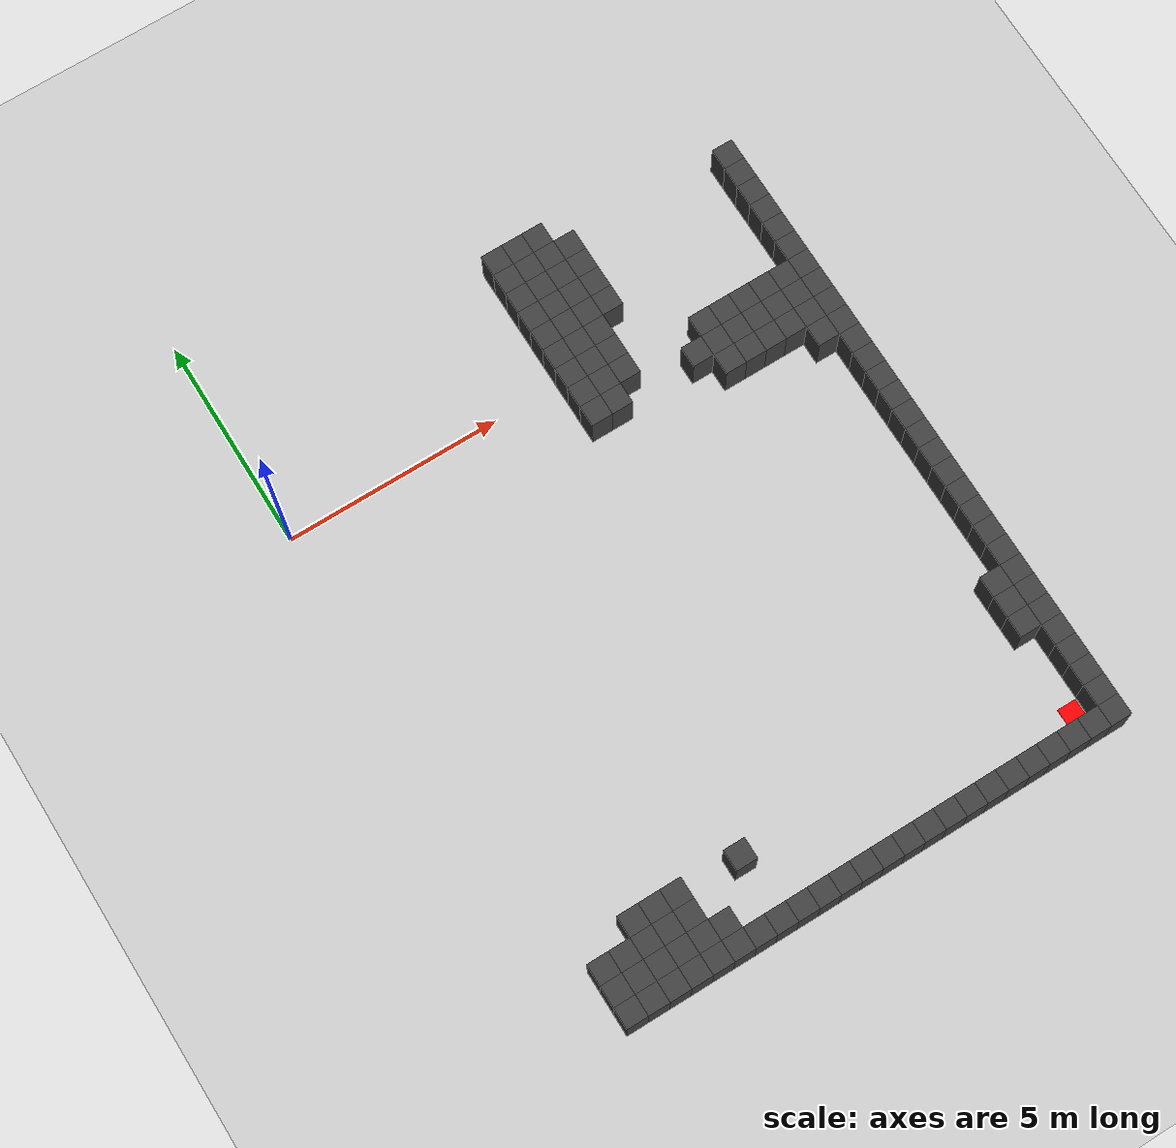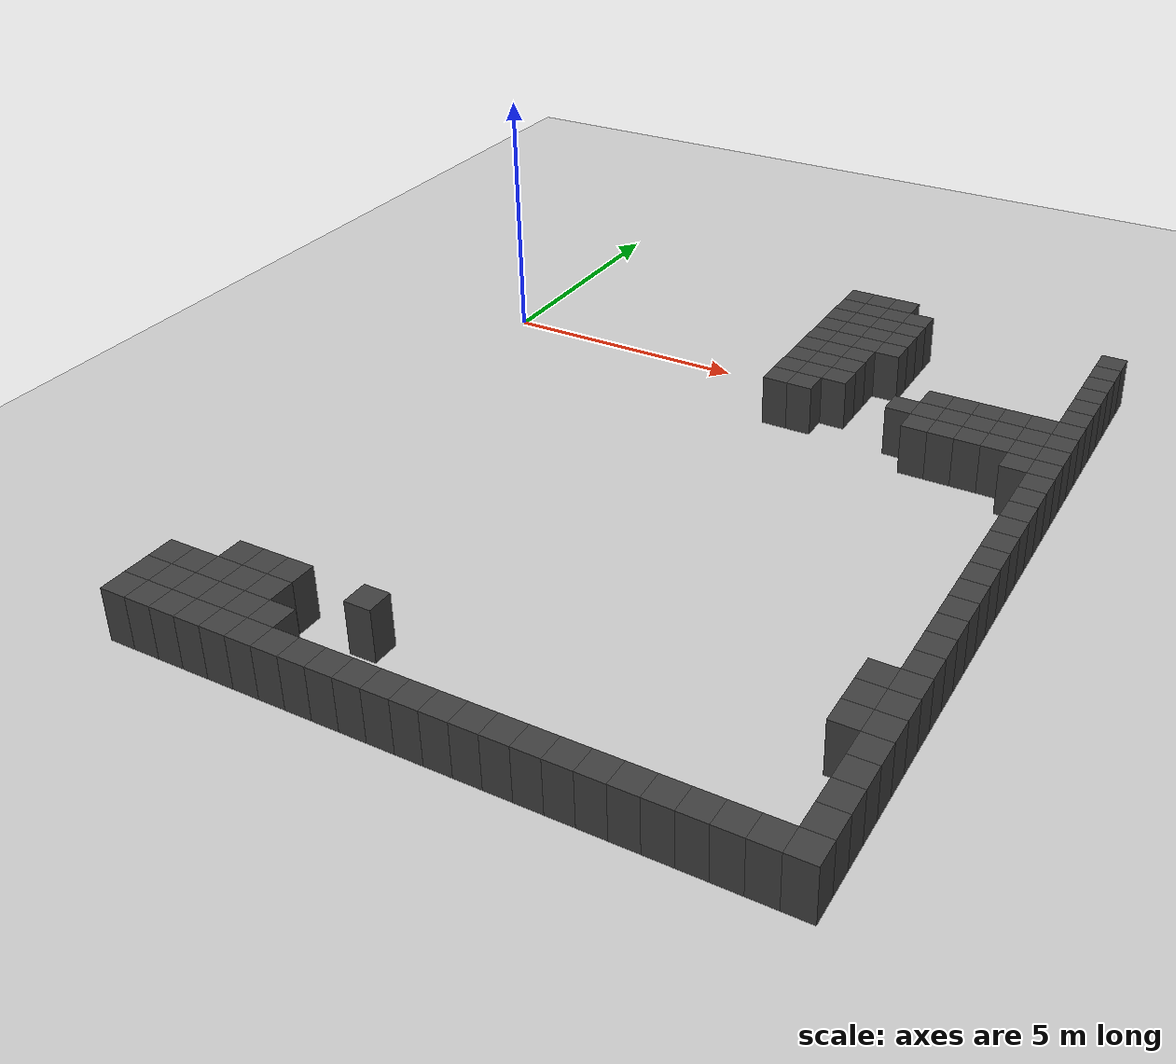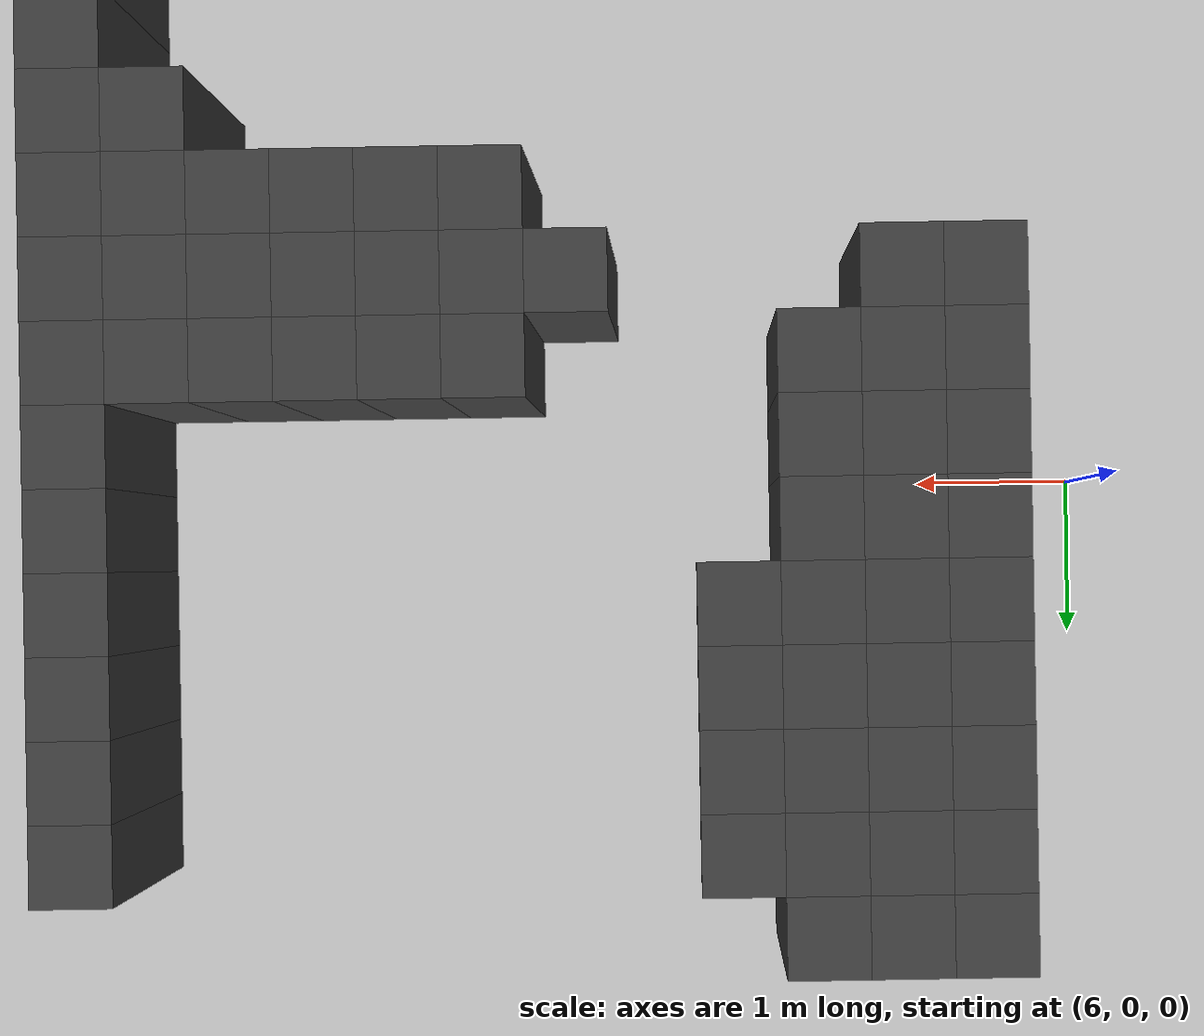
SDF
<sdf version="1.7">
 <world name="map_5836">
  <model name="ground_plane">
   <static>true</static>
   <link name="link">
    <collision name="collision">
     <geometry><plane><normal>0 0 1</normal><size>200 200</size></plane></geometry>
    </collision>
    <visual name="visual">
     <geometry><plane><normal>0 0 1</normal><size>200 200</size></plane></geometry>
     <material><ambient>0.8 0.8 0.8 1</ambient><diffuse>0.8 0.8 0.8 1</diffuse></material>
    </visual>
   </link>
  </model>
  <model name="maze_environment">
   <static>true</static>
   <link name="wall_222">
    <pose>6.750 2.750 0.500 0 0 0</pose>
    <collision name="col"><geometry><box><size>0.5 0.5 1.0</size></box></geometry></collision>
    <visual name="vis">
     <geometry><box><size>0.5 0.5 1.0</size></box></geometry>
     <material><ambient>0.15 0.15 0.15 1</ambient><diffuse>0.25 0.25 0.25 1</diffuse></material>
    </visual>
   </link>
   <link name="wall_223">
    <pose>7.250 2.750 0.500 0 0 0</pose>
    <collision name="col"><geometry><box><size>0.5 0.5 1.0</size></box></geometry></collision>
    <visual name="vis">
     <geometry><box><size>0.5 0.5 1.0</size></box></geometry>
     <material><ambient>0.15 0.15 0.15 1</ambient><diffuse>0.25 0.25 0.25 1</diffuse></material>
    </visual>
   </link>
   <link name="wall_224">
    <pose>7.750 2.750 0.500 0 0 0</pose>
    <collision name="col"><geometry><box><size>0.5 0.5 1.0</size></box></geometry></collision>
    <visual name="vis">
     <geometry><box><size>0.5 0.5 1.0</size></box></geometry>
     <material><ambient>0.15 0.15 0.15 1</ambient><diffuse>0.25 0.25 0.25 1</diffuse></material>
    </visual>
   </link>
   <link name="wall_230">
    <pose>6.750 2.250 0.500 0 0 0</pose>
    <collision name="col"><geometry><box><size>0.5 0.5 1.0</size></box></geometry></collision>
    <visual name="vis">
     <geometry><box><size>0.5 0.5 1.0</size></box></geometry>
     <material><ambient>0.15 0.15 0.15 1</ambient><diffuse>0.25 0.25 0.25 1</diffuse></material>
    </visual>
   </link>
   <link name="wall_231">
    <pose>7.250 2.250 0.500 0 0 0</pose>
    <collision name="col"><geometry><box><size>0.5 0.5 1.0</size></box></geometry></collision>
    <visual name="vis">
     <geometry><box><size>0.5 0.5 1.0</size></box></geometry>
     <material><ambient>0.15 0.15 0.15 1</ambient><diffuse>0.25 0.25 0.25 1</diffuse></material>
    </visual>
   </link>
   <link name="wall_232">
    <pose>7.750 2.250 0.500 0 0 0</pose>
    <collision name="col"><geometry><box><size>0.5 0.5 1.0</size></box></geometry></collision>
    <visual name="vis">
     <geometry><box><size>0.5 0.5 1.0</size></box></geometry>
     <material><ambient>0.15 0.15 0.15 1</ambient><diffuse>0.25 0.25 0.25 1</diffuse></material>
    </visual>
   </link>
   <link name="wall_233">
    <pose>8.250 2.250 0.500 0 0 0</pose>
    <collision name="col"><geometry><box><size>0.5 0.5 1.0</size></box></geometry></collision>
    <visual name="vis">
     <geometry><box><size>0.5 0.5 1.0</size></box></geometry>
     <material><ambient>0.15 0.15 0.15 1</ambient><diffuse>0.25 0.25 0.25 1</diffuse></material>
    </visual>
   </link>
   <link name="wall_234">
    <pose>12.250 2.250 0.500 0 0 0</pose>
    <collision name="col"><geometry><box><size>0.5 0.5 1.0</size></box></geometry></collision>
    <visual name="vis">
     <geometry><box><size>0.5 0.5 1.0</size></box></geometry>
     <material><ambient>0.15 0.15 0.15 1</ambient><diffuse>0.25 0.25 0.25 1</diffuse></material>
    </visual>
   </link>
   <link name="wall_238">
    <pose>6.750 1.750 0.500 0 0 0</pose>
    <collision name="col"><geometry><box><size>0.5 0.5 1.0</size></box></geometry></collision>
    <visual name="vis">
     <geometry><box><size>0.5 0.5 1.0</size></box></geometry>
     <material><ambient>0.15 0.15 0.15 1</ambient><diffuse>0.25 0.25 0.25 1</diffuse></material>
    </visual>
   </link>
   <link name="wall_239">
    <pose>7.250 1.750 0.500 0 0 0</pose>
    <collision name="col"><geometry><box><size>0.5 0.5 1.0</size></box></geometry></collision>
    <visual name="vis">
     <geometry><box><size>0.5 0.5 1.0</size></box></geometry>
     <material><ambient>0.15 0.15 0.15 1</ambient><diffuse>0.25 0.25 0.25 1</diffuse></material>
    </visual>
   </link>
   <link name="wall_240">
    <pose>7.750 1.750 0.500 0 0 0</pose>
    <collision name="col"><geometry><box><size>0.5 0.5 1.0</size></box></geometry></collision>
    <visual name="vis">
     <geometry><box><size>0.5 0.5 1.0</size></box></geometry>
     <material><ambient>0.15 0.15 0.15 1</ambient><diffuse>0.25 0.25 0.25 1</diffuse></material>
    </visual>
   </link>
   <link name="wall_241">
    <pose>8.250 1.750 0.500 0 0 0</pose>
    <collision name="col"><geometry><box><size>0.5 0.5 1.0</size></box></geometry></collision>
    <visual name="vis">
     <geometry><box><size>0.5 0.5 1.0</size></box></geometry>
     <material><ambient>0.15 0.15 0.15 1</ambient><diffuse>0.25 0.25 0.25 1</diffuse></material>
    </visual>
   </link>
   <link name="wall_242">
    <pose>12.250 1.750 0.500 0 0 0</pose>
    <collision name="col"><geometry><box><size>0.5 0.5 1.0</size></box></geometry></collision>
    <visual name="vis">
     <geometry><box><size>0.5 0.5 1.0</size></box></geometry>
     <material><ambient>0.15 0.15 0.15 1</ambient><diffuse>0.25 0.25 0.25 1</diffuse></material>
    </visual>
   </link>
   <link name="wall_249">
    <pose>6.750 1.250 0.500 0 0 0</pose>
    <collision name="col"><geometry><box><size>0.5 0.5 1.0</size></box></geometry></collision>
    <visual name="vis">
     <geometry><box><size>0.5 0.5 1.0</size></box></geometry>
     <material><ambient>0.15 0.15 0.15 1</ambient><diffuse>0.25 0.25 0.25 1</diffuse></material>
    </visual>
   </link>
   <link name="wall_250">
    <pose>7.250 1.250 0.500 0 0 0</pose>
    <collision name="col"><geometry><box><size>0.5 0.5 1.0</size></box></geometry></collision>
    <visual name="vis">
     <geometry><box><size>0.5 0.5 1.0</size></box></geometry>
     <material><ambient>0.15 0.15 0.15 1</ambient><diffuse>0.25 0.25 0.25 1</diffuse></material>
    </visual>
   </link>
   <link name="wall_251">
    <pose>7.750 1.250 0.500 0 0 0</pose>
    <collision name="col"><geometry><box><size>0.5 0.5 1.0</size></box></geometry></collision>
    <visual name="vis">
     <geometry><box><size>0.5 0.5 1.0</size></box></geometry>
     <material><ambient>0.15 0.15 0.15 1</ambient><diffuse>0.25 0.25 0.25 1</diffuse></material>
    </visual>
   </link>
   <link name="wall_252">
    <pose>8.250 1.250 0.500 0 0 0</pose>
    <collision name="col"><geometry><box><size>0.5 0.5 1.0</size></box></geometry></collision>
    <visual name="vis">
     <geometry><box><size>0.5 0.5 1.0</size></box></geometry>
     <material><ambient>0.15 0.15 0.15 1</ambient><diffuse>0.25 0.25 0.25 1</diffuse></material>
    </visual>
   </link>
   <link name="wall_253">
    <pose>12.250 1.250 0.500 0 0 0</pose>
    <collision name="col"><geometry><box><size>0.5 0.5 1.0</size></box></geometry></collision>
    <visual name="vis">
     <geometry><box><size>0.5 0.5 1.0</size></box></geometry>
     <material><ambient>0.15 0.15 0.15 1</ambient><diffuse>0.25 0.25 0.25 1</diffuse></material>
    </visual>
   </link>
   <link name="wall_260">
    <pose>6.750 0.750 0.500 0 0 0</pose>
    <collision name="col"><geometry><box><size>0.5 0.5 1.0</size></box></geometry></collision>
    <visual name="vis">
     <geometry><box><size>0.5 0.5 1.0</size></box></geometry>
     <material><ambient>0.15 0.15 0.15 1</ambient><diffuse>0.25 0.25 0.25 1</diffuse></material>
    </visual>
   </link>
   <link name="wall_261">
    <pose>7.250 0.750 0.500 0 0 0</pose>
    <collision name="col"><geometry><box><size>0.5 0.5 1.0</size></box></geometry></collision>
    <visual name="vis">
     <geometry><box><size>0.5 0.5 1.0</size></box></geometry>
     <material><ambient>0.15 0.15 0.15 1</ambient><diffuse>0.25 0.25 0.25 1</diffuse></material>
    </visual>
   </link>
   <link name="wall_262">
    <pose>7.750 0.750 0.500 0 0 0</pose>
    <collision name="col"><geometry><box><size>0.5 0.5 1.0</size></box></geometry></collision>
    <visual name="vis">
     <geometry><box><size>0.5 0.5 1.0</size></box></geometry>
     <material><ambient>0.15 0.15 0.15 1</ambient><diffuse>0.25 0.25 0.25 1</diffuse></material>
    </visual>
   </link>
   <link name="wall_263">
    <pose>8.250 0.750 0.500 0 0 0</pose>
    <collision name="col"><geometry><box><size>0.5 0.5 1.0</size></box></geometry></collision>
    <visual name="vis">
     <geometry><box><size>0.5 0.5 1.0</size></box></geometry>
     <material><ambient>0.15 0.15 0.15 1</ambient><diffuse>0.25 0.25 0.25 1</diffuse></material>
    </visual>
   </link>
   <link name="wall_264">
    <pose>12.250 0.750 0.500 0 0 0</pose>
    <collision name="col"><geometry><box><size>0.5 0.5 1.0</size></box></geometry></collision>
    <visual name="vis">
     <geometry><box><size>0.5 0.5 1.0</size></box></geometry>
     <material><ambient>0.15 0.15 0.15 1</ambient><diffuse>0.25 0.25 0.25 1</diffuse></material>
    </visual>
   </link>
   <link name="wall_270">
    <pose>6.750 0.250 0.500 0 0 0</pose>
    <collision name="col"><geometry><box><size>0.5 0.5 1.0</size></box></geometry></collision>
    <visual name="vis">
     <geometry><box><size>0.5 0.5 1.0</size></box></geometry>
     <material><ambient>0.15 0.15 0.15 1</ambient><diffuse>0.25 0.25 0.25 1</diffuse></material>
    </visual>
   </link>
   <link name="wall_271">
    <pose>7.250 0.250 0.500 0 0 0</pose>
    <collision name="col"><geometry><box><size>0.5 0.5 1.0</size></box></geometry></collision>
    <visual name="vis">
     <geometry><box><size>0.5 0.5 1.0</size></box></geometry>
     <material><ambient>0.15 0.15 0.15 1</ambient><diffuse>0.25 0.25 0.25 1</diffuse></material>
    </visual>
   </link>
   <link name="wall_272">
    <pose>7.750 0.250 0.500 0 0 0</pose>
    <collision name="col"><geometry><box><size>0.5 0.5 1.0</size></box></geometry></collision>
    <visual name="vis">
     <geometry><box><size>0.5 0.5 1.0</size></box></geometry>
     <material><ambient>0.15 0.15 0.15 1</ambient><diffuse>0.25 0.25 0.25 1</diffuse></material>
    </visual>
   </link>
   <link name="wall_273">
    <pose>12.250 0.250 0.500 0 0 0</pose>
    <collision name="col"><geometry><box><size>0.5 0.5 1.0</size></box></geometry></collision>
    <visual name="vis">
     <geometry><box><size>0.5 0.5 1.0</size></box></geometry>
     <material><ambient>0.15 0.15 0.15 1</ambient><diffuse>0.25 0.25 0.25 1</diffuse></material>
    </visual>
   </link>
   <link name="wall_278">
    <pose>6.750 -0.250 0.500 0 0 0</pose>
    <collision name="col"><geometry><box><size>0.5 0.5 1.0</size></box></geometry></collision>
    <visual name="vis">
     <geometry><box><size>0.5 0.5 1.0</size></box></geometry>
     <material><ambient>0.15 0.15 0.15 1</ambient><diffuse>0.25 0.25 0.25 1</diffuse></material>
    </visual>
   </link>
   <link name="wall_279">
    <pose>7.250 -0.250 0.500 0 0 0</pose>
    <collision name="col"><geometry><box><size>0.5 0.5 1.0</size></box></geometry></collision>
    <visual name="vis">
     <geometry><box><size>0.5 0.5 1.0</size></box></geometry>
     <material><ambient>0.15 0.15 0.15 1</ambient><diffuse>0.25 0.25 0.25 1</diffuse></material>
    </visual>
   </link>
   <link name="wall_280">
    <pose>7.750 -0.250 0.500 0 0 0</pose>
    <collision name="col"><geometry><box><size>0.5 0.5 1.0</size></box></geometry></collision>
    <visual name="vis">
     <geometry><box><size>0.5 0.5 1.0</size></box></geometry>
     <material><ambient>0.15 0.15 0.15 1</ambient><diffuse>0.25 0.25 0.25 1</diffuse></material>
    </visual>
   </link>
   <link name="wall_281">
    <pose>12.250 -0.250 0.500 0 0 0</pose>
    <collision name="col"><geometry><box><size>0.5 0.5 1.0</size></box></geometry></collision>
    <visual name="vis">
     <geometry><box><size>0.5 0.5 1.0</size></box></geometry>
     <material><ambient>0.15 0.15 0.15 1</ambient><diffuse>0.25 0.25 0.25 1</diffuse></material>
    </visual>
   </link>
   <link name="wall_286">
    <pose>6.750 -0.750 0.500 0 0 0</pose>
    <collision name="col"><geometry><box><size>0.5 0.5 1.0</size></box></geometry></collision>
    <visual name="vis">
     <geometry><box><size>0.5 0.5 1.0</size></box></geometry>
     <material><ambient>0.15 0.15 0.15 1</ambient><diffuse>0.25 0.25 0.25 1</diffuse></material>
    </visual>
   </link>
   <link name="wall_287">
    <pose>7.250 -0.750 0.500 0 0 0</pose>
    <collision name="col"><geometry><box><size>0.5 0.5 1.0</size></box></geometry></collision>
    <visual name="vis">
     <geometry><box><size>0.5 0.5 1.0</size></box></geometry>
     <material><ambient>0.15 0.15 0.15 1</ambient><diffuse>0.25 0.25 0.25 1</diffuse></material>
    </visual>
   </link>
   <link name="wall_288">
    <pose>7.750 -0.750 0.500 0 0 0</pose>
    <collision name="col"><geometry><box><size>0.5 0.5 1.0</size></box></geometry></collision>
    <visual name="vis">
     <geometry><box><size>0.5 0.5 1.0</size></box></geometry>
     <material><ambient>0.15 0.15 0.15 1</ambient><diffuse>0.25 0.25 0.25 1</diffuse></material>
    </visual>
   </link>
   <link name="wall_289">
    <pose>9.750 -0.750 0.500 0 0 0</pose>
    <collision name="col"><geometry><box><size>0.5 0.5 1.0</size></box></geometry></collision>
    <visual name="vis">
     <geometry><box><size>0.5 0.5 1.0</size></box></geometry>
     <material><ambient>0.15 0.15 0.15 1</ambient><diffuse>0.25 0.25 0.25 1</diffuse></material>
    </visual>
   </link>
   <link name="wall_290">
    <pose>10.250 -0.750 0.500 0 0 0</pose>
    <collision name="col"><geometry><box><size>0.5 0.5 1.0</size></box></geometry></collision>
    <visual name="vis">
     <geometry><box><size>0.5 0.5 1.0</size></box></geometry>
     <material><ambient>0.15 0.15 0.15 1</ambient><diffuse>0.25 0.25 0.25 1</diffuse></material>
    </visual>
   </link>
   <link name="wall_291">
    <pose>10.750 -0.750 0.500 0 0 0</pose>
    <collision name="col"><geometry><box><size>0.5 0.5 1.0</size></box></geometry></collision>
    <visual name="vis">
     <geometry><box><size>0.5 0.5 1.0</size></box></geometry>
     <material><ambient>0.15 0.15 0.15 1</ambient><diffuse>0.25 0.25 0.25 1</diffuse></material>
    </visual>
   </link>
   <link name="wall_292">
    <pose>11.250 -0.750 0.500 0 0 0</pose>
    <collision name="col"><geometry><box><size>0.5 0.5 1.0</size></box></geometry></collision>
    <visual name="vis">
     <geometry><box><size>0.5 0.5 1.0</size></box></geometry>
     <material><ambient>0.15 0.15 0.15 1</ambient><diffuse>0.25 0.25 0.25 1</diffuse></material>
    </visual>
   </link>
   <link name="wall_293">
    <pose>11.750 -0.750 0.500 0 0 0</pose>
    <collision name="col"><geometry><box><size>0.5 0.5 1.0</size></box></geometry></collision>
    <visual name="vis">
     <geometry><box><size>0.5 0.5 1.0</size></box></geometry>
     <material><ambient>0.15 0.15 0.15 1</ambient><diffuse>0.25 0.25 0.25 1</diffuse></material>
    </visual>
   </link>
   <link name="wall_294">
    <pose>12.250 -0.750 0.500 0 0 0</pose>
    <collision name="col"><geometry><box><size>0.5 0.5 1.0</size></box></geometry></collision>
    <visual name="vis">
     <geometry><box><size>0.5 0.5 1.0</size></box></geometry>
     <material><ambient>0.15 0.15 0.15 1</ambient><diffuse>0.25 0.25 0.25 1</diffuse></material>
    </visual>
   </link>
   <link name="wall_298">
    <pose>6.750 -1.250 0.500 0 0 0</pose>
    <collision name="col"><geometry><box><size>0.5 0.5 1.0</size></box></geometry></collision>
    <visual name="vis">
     <geometry><box><size>0.5 0.5 1.0</size></box></geometry>
     <material><ambient>0.15 0.15 0.15 1</ambient><diffuse>0.25 0.25 0.25 1</diffuse></material>
    </visual>
   </link>
   <link name="wall_299">
    <pose>7.250 -1.250 0.500 0 0 0</pose>
    <collision name="col"><geometry><box><size>0.5 0.5 1.0</size></box></geometry></collision>
    <visual name="vis">
     <geometry><box><size>0.5 0.5 1.0</size></box></geometry>
     <material><ambient>0.15 0.15 0.15 1</ambient><diffuse>0.25 0.25 0.25 1</diffuse></material>
    </visual>
   </link>
   <link name="wall_300">
    <pose>9.250 -1.250 0.500 0 0 0</pose>
    <collision name="col"><geometry><box><size>0.5 0.5 1.0</size></box></geometry></collision>
    <visual name="vis">
     <geometry><box><size>0.5 0.5 1.0</size></box></geometry>
     <material><ambient>0.15 0.15 0.15 1</ambient><diffuse>0.25 0.25 0.25 1</diffuse></material>
    </visual>
   </link>
   <link name="wall_301">
    <pose>9.750 -1.250 0.500 0 0 0</pose>
    <collision name="col"><geometry><box><size>0.5 0.5 1.0</size></box></geometry></collision>
    <visual name="vis">
     <geometry><box><size>0.5 0.5 1.0</size></box></geometry>
     <material><ambient>0.15 0.15 0.15 1</ambient><diffuse>0.25 0.25 0.25 1</diffuse></material>
    </visual>
   </link>
   <link name="wall_302">
    <pose>10.250 -1.250 0.500 0 0 0</pose>
    <collision name="col"><geometry><box><size>0.5 0.5 1.0</size></box></geometry></collision>
    <visual name="vis">
     <geometry><box><size>0.5 0.5 1.0</size></box></geometry>
     <material><ambient>0.15 0.15 0.15 1</ambient><diffuse>0.25 0.25 0.25 1</diffuse></material>
    </visual>
   </link>
   <link name="wall_303">
    <pose>10.750 -1.250 0.500 0 0 0</pose>
    <collision name="col"><geometry><box><size>0.5 0.5 1.0</size></box></geometry></collision>
    <visual name="vis">
     <geometry><box><size>0.5 0.5 1.0</size></box></geometry>
     <material><ambient>0.15 0.15 0.15 1</ambient><diffuse>0.25 0.25 0.25 1</diffuse></material>
    </visual>
   </link>
   <link name="wall_304">
    <pose>11.250 -1.250 0.500 0 0 0</pose>
    <collision name="col"><geometry><box><size>0.5 0.5 1.0</size></box></geometry></collision>
    <visual name="vis">
     <geometry><box><size>0.5 0.5 1.0</size></box></geometry>
     <material><ambient>0.15 0.15 0.15 1</ambient><diffuse>0.25 0.25 0.25 1</diffuse></material>
    </visual>
   </link>
   <link name="wall_305">
    <pose>11.750 -1.250 0.500 0 0 0</pose>
    <collision name="col"><geometry><box><size>0.5 0.5 1.0</size></box></geometry></collision>
    <visual name="vis">
     <geometry><box><size>0.5 0.5 1.0</size></box></geometry>
     <material><ambient>0.15 0.15 0.15 1</ambient><diffuse>0.25 0.25 0.25 1</diffuse></material>
    </visual>
   </link>
   <link name="wall_306">
    <pose>12.250 -1.250 0.500 0 0 0</pose>
    <collision name="col"><geometry><box><size>0.5 0.5 1.0</size></box></geometry></collision>
    <visual name="vis">
     <geometry><box><size>0.5 0.5 1.0</size></box></geometry>
     <material><ambient>0.15 0.15 0.15 1</ambient><diffuse>0.25 0.25 0.25 1</diffuse></material>
    </visual>
   </link>
   <link name="wall_308">
    <pose>9.750 -1.750 0.500 0 0 0</pose>
    <collision name="col"><geometry><box><size>0.5 0.5 1.0</size></box></geometry></collision>
    <visual name="vis">
     <geometry><box><size>0.5 0.5 1.0</size></box></geometry>
     <material><ambient>0.15 0.15 0.15 1</ambient><diffuse>0.25 0.25 0.25 1</diffuse></material>
    </visual>
   </link>
   <link name="wall_309">
    <pose>10.250 -1.750 0.500 0 0 0</pose>
    <collision name="col"><geometry><box><size>0.5 0.5 1.0</size></box></geometry></collision>
    <visual name="vis">
     <geometry><box><size>0.5 0.5 1.0</size></box></geometry>
     <material><ambient>0.15 0.15 0.15 1</ambient><diffuse>0.25 0.25 0.25 1</diffuse></material>
    </visual>
   </link>
   <link name="wall_310">
    <pose>10.750 -1.750 0.500 0 0 0</pose>
    <collision name="col"><geometry><box><size>0.5 0.5 1.0</size></box></geometry></collision>
    <visual name="vis">
     <geometry><box><size>0.5 0.5 1.0</size></box></geometry>
     <material><ambient>0.15 0.15 0.15 1</ambient><diffuse>0.25 0.25 0.25 1</diffuse></material>
    </visual>
   </link>
   <link name="wall_311">
    <pose>11.250 -1.750 0.500 0 0 0</pose>
    <collision name="col"><geometry><box><size>0.5 0.5 1.0</size></box></geometry></collision>
    <visual name="vis">
     <geometry><box><size>0.5 0.5 1.0</size></box></geometry>
     <material><ambient>0.15 0.15 0.15 1</ambient><diffuse>0.25 0.25 0.25 1</diffuse></material>
    </visual>
   </link>
   <link name="wall_312">
    <pose>11.750 -1.750 0.500 0 0 0</pose>
    <collision name="col"><geometry><box><size>0.5 0.5 1.0</size></box></geometry></collision>
    <visual name="vis">
     <geometry><box><size>0.5 0.5 1.0</size></box></geometry>
     <material><ambient>0.15 0.15 0.15 1</ambient><diffuse>0.25 0.25 0.25 1</diffuse></material>
    </visual>
   </link>
   <link name="wall_313">
    <pose>12.250 -1.750 0.500 0 0 0</pose>
    <collision name="col"><geometry><box><size>0.5 0.5 1.0</size></box></geometry></collision>
    <visual name="vis">
     <geometry><box><size>0.5 0.5 1.0</size></box></geometry>
     <material><ambient>0.15 0.15 0.15 1</ambient><diffuse>0.25 0.25 0.25 1</diffuse></material>
    </visual>
   </link>
   <link name="wall_315">
    <pose>11.750 -2.250 0.500 0 0 0</pose>
    <collision name="col"><geometry><box><size>0.5 0.5 1.0</size></box></geometry></collision>
    <visual name="vis">
     <geometry><box><size>0.5 0.5 1.0</size></box></geometry>
     <material><ambient>0.15 0.15 0.15 1</ambient><diffuse>0.25 0.25 0.25 1</diffuse></material>
    </visual>
   </link>
   <link name="wall_316">
    <pose>12.250 -2.250 0.500 0 0 0</pose>
    <collision name="col"><geometry><box><size>0.5 0.5 1.0</size></box></geometry></collision>
    <visual name="vis">
     <geometry><box><size>0.5 0.5 1.0</size></box></geometry>
     <material><ambient>0.15 0.15 0.15 1</ambient><diffuse>0.25 0.25 0.25 1</diffuse></material>
    </visual>
   </link>
   <link name="wall_318">
    <pose>12.250 -2.750 0.500 0 0 0</pose>
    <collision name="col"><geometry><box><size>0.5 0.5 1.0</size></box></geometry></collision>
    <visual name="vis">
     <geometry><box><size>0.5 0.5 1.0</size></box></geometry>
     <material><ambient>0.15 0.15 0.15 1</ambient><diffuse>0.25 0.25 0.25 1</diffuse></material>
    </visual>
   </link>
   <link name="wall_320">
    <pose>12.250 -3.250 0.500 0 0 0</pose>
    <collision name="col"><geometry><box><size>0.5 0.5 1.0</size></box></geometry></collision>
    <visual name="vis">
     <geometry><box><size>0.5 0.5 1.0</size></box></geometry>
     <material><ambient>0.15 0.15 0.15 1</ambient><diffuse>0.25 0.25 0.25 1</diffuse></material>
    </visual>
   </link>
   <link name="wall_322">
    <pose>12.250 -3.750 0.500 0 0 0</pose>
    <collision name="col"><geometry><box><size>0.5 0.5 1.0</size></box></geometry></collision>
    <visual name="vis">
     <geometry><box><size>0.5 0.5 1.0</size></box></geometry>
     <material><ambient>0.15 0.15 0.15 1</ambient><diffuse>0.25 0.25 0.25 1</diffuse></material>
    </visual>
   </link>
   <link name="wall_324">
    <pose>12.250 -4.250 0.500 0 0 0</pose>
    <collision name="col"><geometry><box><size>0.5 0.5 1.0</size></box></geometry></collision>
    <visual name="vis">
     <geometry><box><size>0.5 0.5 1.0</size></box></geometry>
     <material><ambient>0.15 0.15 0.15 1</ambient><diffuse>0.25 0.25 0.25 1</diffuse></material>
    </visual>
   </link>
   <link name="wall_326">
    <pose>12.250 -4.750 0.500 0 0 0</pose>
    <collision name="col"><geometry><box><size>0.5 0.5 1.0</size></box></geometry></collision>
    <visual name="vis">
     <geometry><box><size>0.5 0.5 1.0</size></box></geometry>
     <material><ambient>0.15 0.15 0.15 1</ambient><diffuse>0.25 0.25 0.25 1</diffuse></material>
    </visual>
   </link>
   <link name="wall_329">
    <pose>12.250 -5.250 0.500 0 0 0</pose>
    <collision name="col"><geometry><box><size>0.5 0.5 1.0</size></box></geometry></collision>
    <visual name="vis">
     <geometry><box><size>0.5 0.5 1.0</size></box></geometry>
     <material><ambient>0.15 0.15 0.15 1</ambient><diffuse>0.25 0.25 0.25 1</diffuse></material>
    </visual>
   </link>
   <link name="wall_334">
    <pose>12.250 -5.750 0.500 0 0 0</pose>
    <collision name="col"><geometry><box><size>0.5 0.5 1.0</size></box></geometry></collision>
    <visual name="vis">
     <geometry><box><size>0.5 0.5 1.0</size></box></geometry>
     <material><ambient>0.15 0.15 0.15 1</ambient><diffuse>0.25 0.25 0.25 1</diffuse></material>
    </visual>
   </link>
   <link name="wall_339">
    <pose>12.250 -6.250 0.500 0 0 0</pose>
    <collision name="col"><geometry><box><size>0.5 0.5 1.0</size></box></geometry></collision>
    <visual name="vis">
     <geometry><box><size>0.5 0.5 1.0</size></box></geometry>
     <material><ambient>0.15 0.15 0.15 1</ambient><diffuse>0.25 0.25 0.25 1</diffuse></material>
    </visual>
   </link>
   <link name="wall_344">
    <pose>12.250 -6.750 0.500 0 0 0</pose>
    <collision name="col"><geometry><box><size>0.5 0.5 1.0</size></box></geometry></collision>
    <visual name="vis">
     <geometry><box><size>0.5 0.5 1.0</size></box></geometry>
     <material><ambient>0.15 0.15 0.15 1</ambient><diffuse>0.25 0.25 0.25 1</diffuse></material>
    </visual>
   </link>
   <link name="wall_347">
    <pose>12.250 -7.250 0.500 0 0 0</pose>
    <collision name="col"><geometry><box><size>0.5 0.5 1.0</size></box></geometry></collision>
    <visual name="vis">
     <geometry><box><size>0.5 0.5 1.0</size></box></geometry>
     <material><ambient>0.15 0.15 0.15 1</ambient><diffuse>0.25 0.25 0.25 1</diffuse></material>
    </visual>
   </link>
   <link name="wall_349">
    <pose>12.250 -7.750 0.500 0 0 0</pose>
    <collision name="col"><geometry><box><size>0.5 0.5 1.0</size></box></geometry></collision>
    <visual name="vis">
     <geometry><box><size>0.5 0.5 1.0</size></box></geometry>
     <material><ambient>0.15 0.15 0.15 1</ambient><diffuse>0.25 0.25 0.25 1</diffuse></material>
    </visual>
   </link>
   <link name="wall_351">
    <pose>12.250 -8.250 0.500 0 0 0</pose>
    <collision name="col"><geometry><box><size>0.5 0.5 1.0</size></box></geometry></collision>
    <visual name="vis">
     <geometry><box><size>0.5 0.5 1.0</size></box></geometry>
     <material><ambient>0.15 0.15 0.15 1</ambient><diffuse>0.25 0.25 0.25 1</diffuse></material>
    </visual>
   </link>
   <link name="wall_353">
    <pose>11.750 -8.750 0.500 0 0 0</pose>
    <collision name="col"><geometry><box><size>0.5 0.5 1.0</size></box></geometry></collision>
    <visual name="vis">
     <geometry><box><size>0.5 0.5 1.0</size></box></geometry>
     <material><ambient>0.15 0.15 0.15 1</ambient><diffuse>0.25 0.25 0.25 1</diffuse></material>
    </visual>
   </link>
   <link name="wall_354">
    <pose>12.250 -8.750 0.500 0 0 0</pose>
    <collision name="col"><geometry><box><size>0.5 0.5 1.0</size></box></geometry></collision>
    <visual name="vis">
     <geometry><box><size>0.5 0.5 1.0</size></box></geometry>
     <material><ambient>0.15 0.15 0.15 1</ambient><diffuse>0.25 0.25 0.25 1</diffuse></material>
    </visual>
   </link>
   <link name="wall_359">
    <pose>11.750 -9.250 0.500 0 0 0</pose>
    <collision name="col"><geometry><box><size>0.5 0.5 1.0</size></box></geometry></collision>
    <visual name="vis">
     <geometry><box><size>0.5 0.5 1.0</size></box></geometry>
     <material><ambient>0.15 0.15 0.15 1</ambient><diffuse>0.25 0.25 0.25 1</diffuse></material>
    </visual>
   </link>
   <link name="wall_360">
    <pose>12.250 -9.250 0.500 0 0 0</pose>
    <collision name="col"><geometry><box><size>0.5 0.5 1.0</size></box></geometry></collision>
    <visual name="vis">
     <geometry><box><size>0.5 0.5 1.0</size></box></geometry>
     <material><ambient>0.15 0.15 0.15 1</ambient><diffuse>0.25 0.25 0.25 1</diffuse></material>
    </visual>
   </link>
   <link name="wall_367">
    <pose>11.750 -9.750 0.500 0 0 0</pose>
    <collision name="col"><geometry><box><size>0.5 0.5 1.0</size></box></geometry></collision>
    <visual name="vis">
     <geometry><box><size>0.5 0.5 1.0</size></box></geometry>
     <material><ambient>0.15 0.15 0.15 1</ambient><diffuse>0.25 0.25 0.25 1</diffuse></material>
    </visual>
   </link>
   <link name="wall_368">
    <pose>12.250 -9.750 0.500 0 0 0</pose>
    <collision name="col"><geometry><box><size>0.5 0.5 1.0</size></box></geometry></collision>
    <visual name="vis">
     <geometry><box><size>0.5 0.5 1.0</size></box></geometry>
     <material><ambient>0.15 0.15 0.15 1</ambient><diffuse>0.25 0.25 0.25 1</diffuse></material>
    </visual>
   </link>
   <link name="wall_377">
    <pose>12.250 -10.250 0.500 0 0 0</pose>
    <collision name="col"><geometry><box><size>0.5 0.5 1.0</size></box></geometry></collision>
    <visual name="vis">
     <geometry><box><size>0.5 0.5 1.0</size></box></geometry>
     <material><ambient>0.15 0.15 0.15 1</ambient><diffuse>0.25 0.25 0.25 1</diffuse></material>
    </visual>
   </link>
   <link name="wall_386">
    <pose>1.750 -10.750 0.500 0 0 0</pose>
    <collision name="col"><geometry><box><size>0.5 0.5 1.0</size></box></geometry></collision>
    <visual name="vis">
     <geometry><box><size>0.5 0.5 1.0</size></box></geometry>
     <material><ambient>0.15 0.15 0.15 1</ambient><diffuse>0.25 0.25 0.25 1</diffuse></material>
    </visual>
   </link>
   <link name="wall_387">
    <pose>2.250 -10.750 0.500 0 0 0</pose>
    <collision name="col"><geometry><box><size>0.5 0.5 1.0</size></box></geometry></collision>
    <visual name="vis">
     <geometry><box><size>0.5 0.5 1.0</size></box></geometry>
     <material><ambient>0.15 0.15 0.15 1</ambient><diffuse>0.25 0.25 0.25 1</diffuse></material>
    </visual>
   </link>
   <link name="wall_388">
    <pose>2.750 -10.750 0.500 0 0 0</pose>
    <collision name="col"><geometry><box><size>0.5 0.5 1.0</size></box></geometry></collision>
    <visual name="vis">
     <geometry><box><size>0.5 0.5 1.0</size></box></geometry>
     <material><ambient>0.15 0.15 0.15 1</ambient><diffuse>0.25 0.25 0.25 1</diffuse></material>
    </visual>
   </link>
   <link name="wall_389">
    <pose>4.250 -10.750 0.500 0 0 0</pose>
    <collision name="col"><geometry><box><size>0.5 0.5 1.0</size></box></geometry></collision>
    <visual name="vis">
     <geometry><box><size>0.5 0.5 1.0</size></box></geometry>
     <material><ambient>0.15 0.15 0.15 1</ambient><diffuse>0.25 0.25 0.25 1</diffuse></material>
    </visual>
   </link>
   <link name="wall_390">
    <pose>12.250 -10.750 0.500 0 0 0</pose>
    <collision name="col"><geometry><box><size>0.5 0.5 1.0</size></box></geometry></collision>
    <visual name="vis">
     <geometry><box><size>0.5 0.5 1.0</size></box></geometry>
     <material><ambient>0.15 0.15 0.15 1</ambient><diffuse>0.25 0.25 0.25 1</diffuse></material>
    </visual>
   </link>
   <link name="wall_399">
    <pose>0.750 -11.250 0.500 0 0 0</pose>
    <collision name="col"><geometry><box><size>0.5 0.5 1.0</size></box></geometry></collision>
    <visual name="vis">
     <geometry><box><size>0.5 0.5 1.0</size></box></geometry>
     <material><ambient>0.15 0.15 0.15 1</ambient><diffuse>0.25 0.25 0.25 1</diffuse></material>
    </visual>
   </link>
   <link name="wall_400">
    <pose>1.250 -11.250 0.500 0 0 0</pose>
    <collision name="col"><geometry><box><size>0.5 0.5 1.0</size></box></geometry></collision>
    <visual name="vis">
     <geometry><box><size>0.5 0.5 1.0</size></box></geometry>
     <material><ambient>0.15 0.15 0.15 1</ambient><diffuse>0.25 0.25 0.25 1</diffuse></material>
    </visual>
   </link>
   <link name="wall_401">
    <pose>1.750 -11.250 0.500 0 0 0</pose>
    <collision name="col"><geometry><box><size>0.5 0.5 1.0</size></box></geometry></collision>
    <visual name="vis">
     <geometry><box><size>0.5 0.5 1.0</size></box></geometry>
     <material><ambient>0.15 0.15 0.15 1</ambient><diffuse>0.25 0.25 0.25 1</diffuse></material>
    </visual>
   </link>
   <link name="wall_402">
    <pose>2.250 -11.250 0.500 0 0 0</pose>
    <collision name="col"><geometry><box><size>0.5 0.5 1.0</size></box></geometry></collision>
    <visual name="vis">
     <geometry><box><size>0.5 0.5 1.0</size></box></geometry>
     <material><ambient>0.15 0.15 0.15 1</ambient><diffuse>0.25 0.25 0.25 1</diffuse></material>
    </visual>
   </link>
   <link name="wall_403">
    <pose>2.750 -11.250 0.500 0 0 0</pose>
    <collision name="col"><geometry><box><size>0.5 0.5 1.0</size></box></geometry></collision>
    <visual name="vis">
     <geometry><box><size>0.5 0.5 1.0</size></box></geometry>
     <material><ambient>0.15 0.15 0.15 1</ambient><diffuse>0.25 0.25 0.25 1</diffuse></material>
    </visual>
   </link>
   <link name="wall_404">
    <pose>12.250 -11.250 0.500 0 0 0</pose>
    <collision name="col"><geometry><box><size>0.5 0.5 1.0</size></box></geometry></collision>
    <visual name="vis">
     <geometry><box><size>0.5 0.5 1.0</size></box></geometry>
     <material><ambient>0.15 0.15 0.15 1</ambient><diffuse>0.25 0.25 0.25 1</diffuse></material>
    </visual>
   </link>
   <link name="wall_416">
    <pose>0.750 -11.750 0.500 0 0 0</pose>
    <collision name="col"><geometry><box><size>0.5 0.5 1.0</size></box></geometry></collision>
    <visual name="vis">
     <geometry><box><size>0.5 0.5 1.0</size></box></geometry>
     <material><ambient>0.15 0.15 0.15 1</ambient><diffuse>0.25 0.25 0.25 1</diffuse></material>
    </visual>
   </link>
   <link name="wall_417">
    <pose>1.250 -11.750 0.500 0 0 0</pose>
    <collision name="col"><geometry><box><size>0.5 0.5 1.0</size></box></geometry></collision>
    <visual name="vis">
     <geometry><box><size>0.5 0.5 1.0</size></box></geometry>
     <material><ambient>0.15 0.15 0.15 1</ambient><diffuse>0.25 0.25 0.25 1</diffuse></material>
    </visual>
   </link>
   <link name="wall_418">
    <pose>1.750 -11.750 0.500 0 0 0</pose>
    <collision name="col"><geometry><box><size>0.5 0.5 1.0</size></box></geometry></collision>
    <visual name="vis">
     <geometry><box><size>0.5 0.5 1.0</size></box></geometry>
     <material><ambient>0.15 0.15 0.15 1</ambient><diffuse>0.25 0.25 0.25 1</diffuse></material>
    </visual>
   </link>
   <link name="wall_419">
    <pose>2.250 -11.750 0.500 0 0 0</pose>
    <collision name="col"><geometry><box><size>0.5 0.5 1.0</size></box></geometry></collision>
    <visual name="vis">
     <geometry><box><size>0.5 0.5 1.0</size></box></geometry>
     <material><ambient>0.15 0.15 0.15 1</ambient><diffuse>0.25 0.25 0.25 1</diffuse></material>
    </visual>
   </link>
   <link name="wall_420">
    <pose>2.750 -11.750 0.500 0 0 0</pose>
    <collision name="col"><geometry><box><size>0.5 0.5 1.0</size></box></geometry></collision>
    <visual name="vis">
     <geometry><box><size>0.5 0.5 1.0</size></box></geometry>
     <material><ambient>0.15 0.15 0.15 1</ambient><diffuse>0.25 0.25 0.25 1</diffuse></material>
    </visual>
   </link>
   <link name="wall_421">
    <pose>3.250 -11.750 0.500 0 0 0</pose>
    <collision name="col"><geometry><box><size>0.5 0.5 1.0</size></box></geometry></collision>
    <visual name="vis">
     <geometry><box><size>0.5 0.5 1.0</size></box></geometry>
     <material><ambient>0.15 0.15 0.15 1</ambient><diffuse>0.25 0.25 0.25 1</diffuse></material>
    </visual>
   </link>
   <link name="wall_422">
    <pose>12.250 -11.750 0.500 0 0 0</pose>
    <collision name="col"><geometry><box><size>0.5 0.5 1.0</size></box></geometry></collision>
    <visual name="vis">
     <geometry><box><size>0.5 0.5 1.0</size></box></geometry>
     <material><ambient>0.15 0.15 0.15 1</ambient><diffuse>0.25 0.25 0.25 1</diffuse></material>
    </visual>
   </link>
   <link name="wall_449">
    <pose>0.750 -12.250 0.500 0 0 0</pose>
    <collision name="col"><geometry><box><size>0.5 0.5 1.0</size></box></geometry></collision>
    <visual name="vis">
     <geometry><box><size>0.5 0.5 1.0</size></box></geometry>
     <material><ambient>0.15 0.15 0.15 1</ambient><diffuse>0.25 0.25 0.25 1</diffuse></material>
    </visual>
   </link>
   <link name="wall_450">
    <pose>1.250 -12.250 0.500 0 0 0</pose>
    <collision name="col"><geometry><box><size>0.5 0.5 1.0</size></box></geometry></collision>
    <visual name="vis">
     <geometry><box><size>0.5 0.5 1.0</size></box></geometry>
     <material><ambient>0.15 0.15 0.15 1</ambient><diffuse>0.25 0.25 0.25 1</diffuse></material>
    </visual>
   </link>
   <link name="wall_451">
    <pose>1.750 -12.250 0.500 0 0 0</pose>
    <collision name="col"><geometry><box><size>0.5 0.5 1.0</size></box></geometry></collision>
    <visual name="vis">
     <geometry><box><size>0.5 0.5 1.0</size></box></geometry>
     <material><ambient>0.15 0.15 0.15 1</ambient><diffuse>0.25 0.25 0.25 1</diffuse></material>
    </visual>
   </link>
   <link name="wall_452">
    <pose>2.250 -12.250 0.500 0 0 0</pose>
    <collision name="col"><geometry><box><size>0.5 0.5 1.0</size></box></geometry></collision>
    <visual name="vis">
     <geometry><box><size>0.5 0.5 1.0</size></box></geometry>
     <material><ambient>0.15 0.15 0.15 1</ambient><diffuse>0.25 0.25 0.25 1</diffuse></material>
    </visual>
   </link>
   <link name="wall_453">
    <pose>2.750 -12.250 0.500 0 0 0</pose>
    <collision name="col"><geometry><box><size>0.5 0.5 1.0</size></box></geometry></collision>
    <visual name="vis">
     <geometry><box><size>0.5 0.5 1.0</size></box></geometry>
     <material><ambient>0.15 0.15 0.15 1</ambient><diffuse>0.25 0.25 0.25 1</diffuse></material>
    </visual>
   </link>
   <link name="wall_454">
    <pose>3.250 -12.250 0.500 0 0 0</pose>
    <collision name="col"><geometry><box><size>0.5 0.5 1.0</size></box></geometry></collision>
    <visual name="vis">
     <geometry><box><size>0.5 0.5 1.0</size></box></geometry>
     <material><ambient>0.15 0.15 0.15 1</ambient><diffuse>0.25 0.25 0.25 1</diffuse></material>
    </visual>
   </link>
   <link name="wall_455">
    <pose>3.750 -12.250 0.500 0 0 0</pose>
    <collision name="col"><geometry><box><size>0.5 0.5 1.0</size></box></geometry></collision>
    <visual name="vis">
     <geometry><box><size>0.5 0.5 1.0</size></box></geometry>
     <material><ambient>0.15 0.15 0.15 1</ambient><diffuse>0.25 0.25 0.25 1</diffuse></material>
    </visual>
   </link>
   <link name="wall_456">
    <pose>4.250 -12.250 0.500 0 0 0</pose>
    <collision name="col"><geometry><box><size>0.5 0.5 1.0</size></box></geometry></collision>
    <visual name="vis">
     <geometry><box><size>0.5 0.5 1.0</size></box></geometry>
     <material><ambient>0.15 0.15 0.15 1</ambient><diffuse>0.25 0.25 0.25 1</diffuse></material>
    </visual>
   </link>
   <link name="wall_457">
    <pose>4.750 -12.250 0.500 0 0 0</pose>
    <collision name="col"><geometry><box><size>0.5 0.5 1.0</size></box></geometry></collision>
    <visual name="vis">
     <geometry><box><size>0.5 0.5 1.0</size></box></geometry>
     <material><ambient>0.15 0.15 0.15 1</ambient><diffuse>0.25 0.25 0.25 1</diffuse></material>
    </visual>
   </link>
   <link name="wall_458">
    <pose>5.250 -12.250 0.500 0 0 0</pose>
    <collision name="col"><geometry><box><size>0.5 0.5 1.0</size></box></geometry></collision>
    <visual name="vis">
     <geometry><box><size>0.5 0.5 1.0</size></box></geometry>
     <material><ambient>0.15 0.15 0.15 1</ambient><diffuse>0.25 0.25 0.25 1</diffuse></material>
    </visual>
   </link>
   <link name="wall_459">
    <pose>5.750 -12.250 0.500 0 0 0</pose>
    <collision name="col"><geometry><box><size>0.5 0.5 1.0</size></box></geometry></collision>
    <visual name="vis">
     <geometry><box><size>0.5 0.5 1.0</size></box></geometry>
     <material><ambient>0.15 0.15 0.15 1</ambient><diffuse>0.25 0.25 0.25 1</diffuse></material>
    </visual>
   </link>
   <link name="wall_460">
    <pose>6.250 -12.250 0.500 0 0 0</pose>
    <collision name="col"><geometry><box><size>0.5 0.5 1.0</size></box></geometry></collision>
    <visual name="vis">
     <geometry><box><size>0.5 0.5 1.0</size></box></geometry>
     <material><ambient>0.15 0.15 0.15 1</ambient><diffuse>0.25 0.25 0.25 1</diffuse></material>
    </visual>
   </link>
   <link name="wall_461">
    <pose>6.750 -12.250 0.500 0 0 0</pose>
    <collision name="col"><geometry><box><size>0.5 0.5 1.0</size></box></geometry></collision>
    <visual name="vis">
     <geometry><box><size>0.5 0.5 1.0</size></box></geometry>
     <material><ambient>0.15 0.15 0.15 1</ambient><diffuse>0.25 0.25 0.25 1</diffuse></material>
    </visual>
   </link>
   <link name="wall_462">
    <pose>7.250 -12.250 0.500 0 0 0</pose>
    <collision name="col"><geometry><box><size>0.5 0.5 1.0</size></box></geometry></collision>
    <visual name="vis">
     <geometry><box><size>0.5 0.5 1.0</size></box></geometry>
     <material><ambient>0.15 0.15 0.15 1</ambient><diffuse>0.25 0.25 0.25 1</diffuse></material>
    </visual>
   </link>
   <link name="wall_463">
    <pose>7.750 -12.250 0.500 0 0 0</pose>
    <collision name="col"><geometry><box><size>0.5 0.5 1.0</size></box></geometry></collision>
    <visual name="vis">
     <geometry><box><size>0.5 0.5 1.0</size></box></geometry>
     <material><ambient>0.15 0.15 0.15 1</ambient><diffuse>0.25 0.25 0.25 1</diffuse></material>
    </visual>
   </link>
   <link name="wall_464">
    <pose>8.250 -12.250 0.500 0 0 0</pose>
    <collision name="col"><geometry><box><size>0.5 0.5 1.0</size></box></geometry></collision>
    <visual name="vis">
     <geometry><box><size>0.5 0.5 1.0</size></box></geometry>
     <material><ambient>0.15 0.15 0.15 1</ambient><diffuse>0.25 0.25 0.25 1</diffuse></material>
    </visual>
   </link>
   <link name="wall_465">
    <pose>8.750 -12.250 0.500 0 0 0</pose>
    <collision name="col"><geometry><box><size>0.5 0.5 1.0</size></box></geometry></collision>
    <visual name="vis">
     <geometry><box><size>0.5 0.5 1.0</size></box></geometry>
     <material><ambient>0.15 0.15 0.15 1</ambient><diffuse>0.25 0.25 0.25 1</diffuse></material>
    </visual>
   </link>
   <link name="wall_466">
    <pose>9.250 -12.250 0.500 0 0 0</pose>
    <collision name="col"><geometry><box><size>0.5 0.5 1.0</size></box></geometry></collision>
    <visual name="vis">
     <geometry><box><size>0.5 0.5 1.0</size></box></geometry>
     <material><ambient>0.15 0.15 0.15 1</ambient><diffuse>0.25 0.25 0.25 1</diffuse></material>
    </visual>
   </link>
   <link name="wall_467">
    <pose>9.750 -12.250 0.500 0 0 0</pose>
    <collision name="col"><geometry><box><size>0.5 0.5 1.0</size></box></geometry></collision>
    <visual name="vis">
     <geometry><box><size>0.5 0.5 1.0</size></box></geometry>
     <material><ambient>0.15 0.15 0.15 1</ambient><diffuse>0.25 0.25 0.25 1</diffuse></material>
    </visual>
   </link>
   <link name="wall_468">
    <pose>10.250 -12.250 0.500 0 0 0</pose>
    <collision name="col"><geometry><box><size>0.5 0.5 1.0</size></box></geometry></collision>
    <visual name="vis">
     <geometry><box><size>0.5 0.5 1.0</size></box></geometry>
     <material><ambient>0.15 0.15 0.15 1</ambient><diffuse>0.25 0.25 0.25 1</diffuse></material>
    </visual>
   </link>
   <link name="wall_469">
    <pose>10.750 -12.250 0.500 0 0 0</pose>
    <collision name="col"><geometry><box><size>0.5 0.5 1.0</size></box></geometry></collision>
    <visual name="vis">
     <geometry><box><size>0.5 0.5 1.0</size></box></geometry>
     <material><ambient>0.15 0.15 0.15 1</ambient><diffuse>0.25 0.25 0.25 1</diffuse></material>
    </visual>
   </link>
   <link name="wall_470">
    <pose>11.250 -12.250 0.500 0 0 0</pose>
    <collision name="col"><geometry><box><size>0.5 0.5 1.0</size></box></geometry></collision>
    <visual name="vis">
     <geometry><box><size>0.5 0.5 1.0</size></box></geometry>
     <material><ambient>0.15 0.15 0.15 1</ambient><diffuse>0.25 0.25 0.25 1</diffuse></material>
    </visual>
   </link>
   <link name="wall_471">
    <pose>11.750 -12.250 0.500 0 0 0</pose>
    <collision name="col"><geometry><box><size>0.5 0.5 1.0</size></box></geometry></collision>
    <visual name="vis">
     <geometry><box><size>0.5 0.5 1.0</size></box></geometry>
     <material><ambient>0.15 0.15 0.15 1</ambient><diffuse>0.25 0.25 0.25 1</diffuse></material>
    </visual>
   </link>
   <link name="wall_472">
    <pose>12.250 -12.250 0.500 0 0 0</pose>
    <collision name="col"><geometry><box><size>0.5 0.5 1.0</size></box></geometry></collision>
    <visual name="vis">
     <geometry><box><size>0.5 0.5 1.0</size></box></geometry>
     <material><ambient>0.15 0.15 0.15 1</ambient><diffuse>0.25 0.25 0.25 1</diffuse></material>
    </visual>
   </link>
   <link name="goal_zone">
    <pose>11.750 -11.750 0.005 0 0 0</pose>
    <visual name="vis">
     <geometry><box><size>0.45 0.45 0.01</size></box></geometry>
     <material>
      <ambient>1.0 0.0 0.0 1</ambient>
      <diffuse>1.0 0.0 0.0 1</diffuse>
      <emissive>0.60 0.00 0.00 1</emissive>
     </material>
    </visual>
   </link>
  </model>
 </world>
</sdf>
